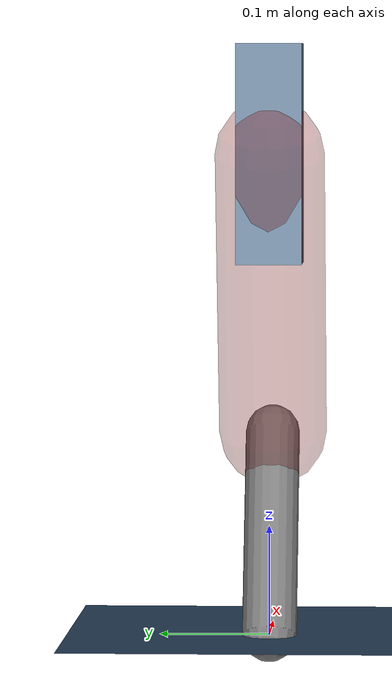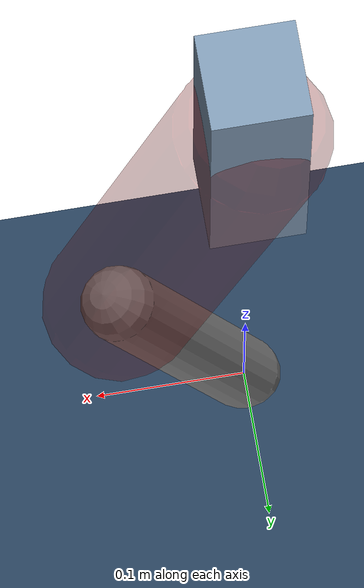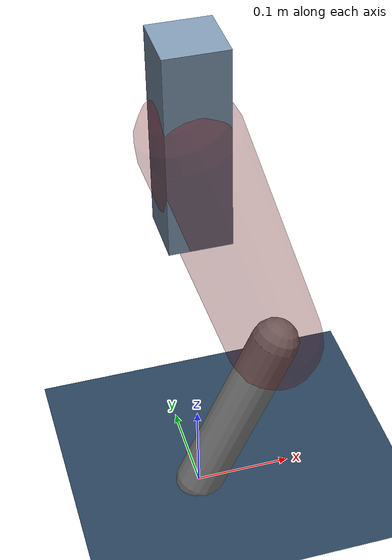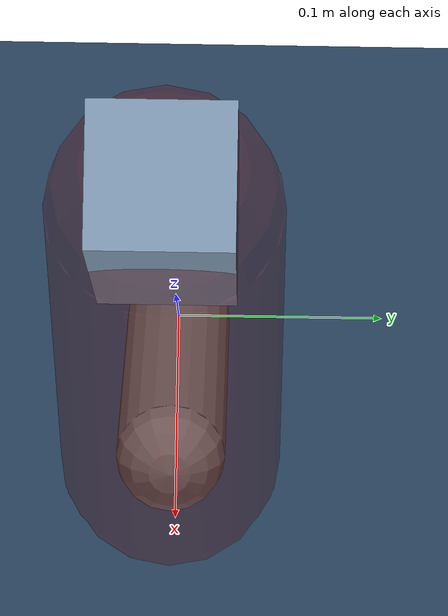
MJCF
<mujoco model="Hopper2D">
	<compiler inertiafromgeom="true" angle="radian" />
	<option timestep="0.001" integrator="implicit" cone="elliptic" solver="Newton" tolerance="1e-10" />

	<default>
		<geom contype="1" conaffinity="1" condim="3" friction="2 0.005 0.0001" solref="0.005 1" />
		<joint limited="true" damping="0.1" />
	</default>

	<asset>
		<texture name="skybox" type="skybox" builtin="gradient" rgb1=".4 .6 .8" rgb2="0 0 0" width="800" height="800" />
		<texture name="grid" type="2d" builtin="checker" rgb1=".1 .2 .3" rgb2=".2 .3 .4" width="300" height="300" mark="edge" markrgb=".2 .3 .4" />
		<material name="ground" texture="grid" texrepeat="1 1" texuniform="true" reflectance="0.1" />
		<material name="leg" rgba="0.5 0.6 0.7 1" />
	</asset>

	<worldbody>

		<geom name="floor" type="plane" size="5 5 0.25" material="ground" />

		<light directional="false" diffuse="0.8 0.8 0.8" specular="0.3 0.3 0.3" pos="0 0 2" dir="0 0 -1" />
		<light mode="targetbodycom" target="base" directional="false" diffuse="0.8 0.8 0.8" specular="0.3 0.3 0.3" pos="0 0 2" dir="0 0 -1" />

		<camera name="fixed" pos="0 -2 1" xyaxes="1 0 0 0 0 1" />
		<camera name="tracking" mode="trackcom" pos="0 -3 1" />

		<body name="root" pos="0 0 0.44014866146480447">
			<joint name="slide_x" type="slide" axis="1 0 0" range="-100 100" />
			<joint name="slide_z" type="slide" axis="0 0 1" range="0 10" />

			<body name="base" pos="0 0 0">
				<geom name="torso" type="box" size="0.03 0.03 0.1" mass="1.842" material="leg" />

				<body name="link1" pos="0 0 0" euler="0 1.2612719729431645 0">
					<joint type="hinge" axis="0 -1 0" pos="0 0 0" name="hinge1" limited="true" range="-3.14 3.14" stiffness="0" damping="0.1" />
					<geom name="thigh" type="capsule" fromto="0 0 0 0.27320709076275773 0 0" size="0.05" rgba="0.5 0 0 0.3" mass="0.91713843598317" />

					<body name="link2" pos="0.27320709076275773 0 0" euler="0 0.7427483939916301 0">
						<joint type="hinge" axis="0 -1 0" pos="0 0 0" name="hinge2" limited="true" range="-3.14 3.14" stiffness="0" damping="0.1" />
						<geom name="shank" type="capsule" fromto="0 0 0 0.19823864095367927 0 0" size="0.025" mass="0.39941477685831134" />

					</body>
				</body>
			</body>
		</body>
	</worldbody>

	<actuator>
		<motor name="torque1" joint="hinge1" ctrlrange="-34.62817336961494 34.62817336961494" ctrllimited="true" gear="1" />
		<motor name="torque2" joint="hinge2" ctrlrange="-14.69791109086811 14.69791109086811" ctrllimited="true" gear="1" />
	</actuator>
</mujoco>
